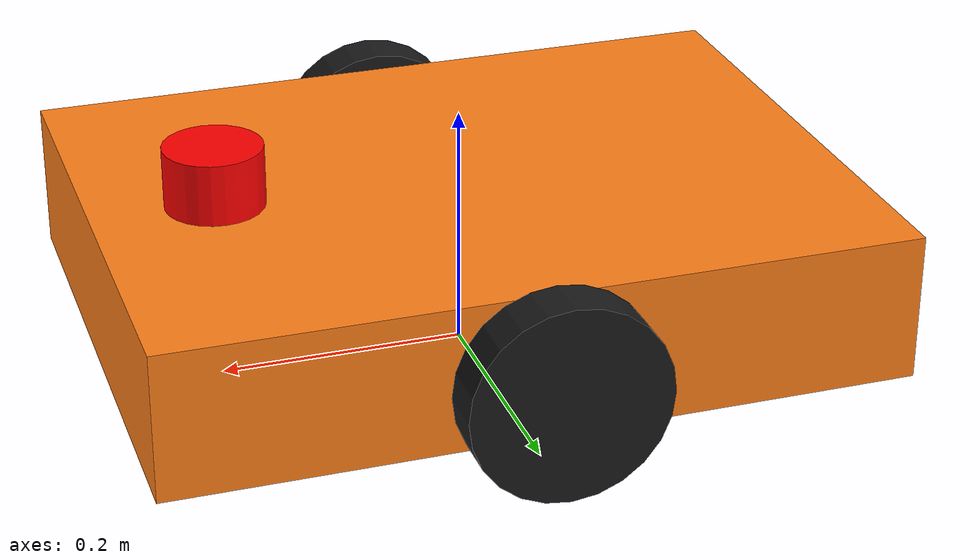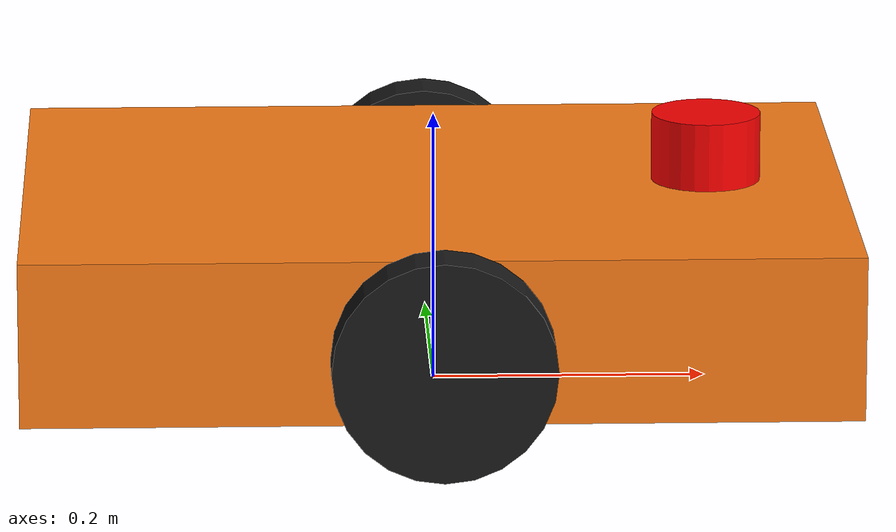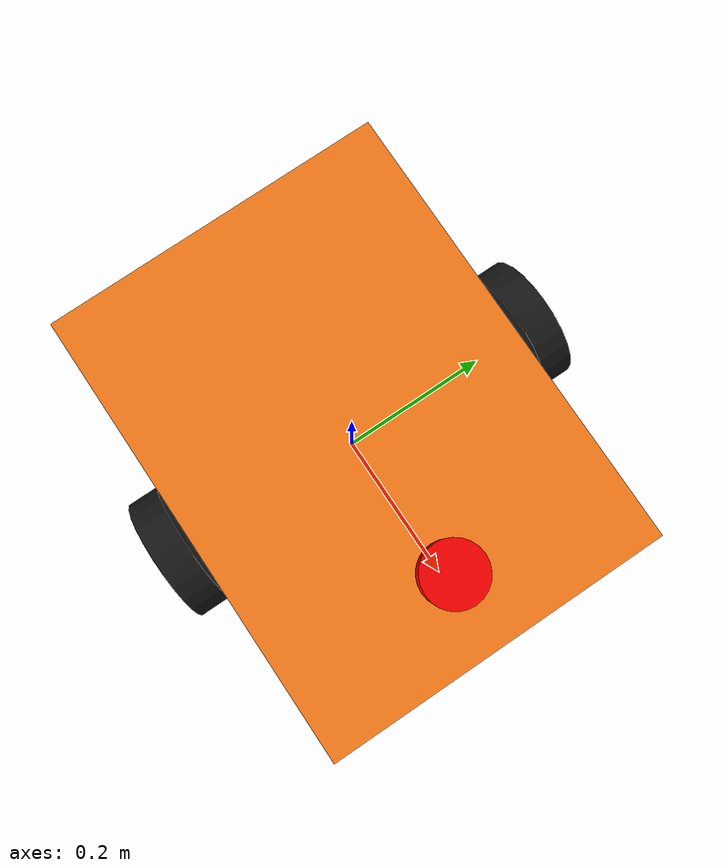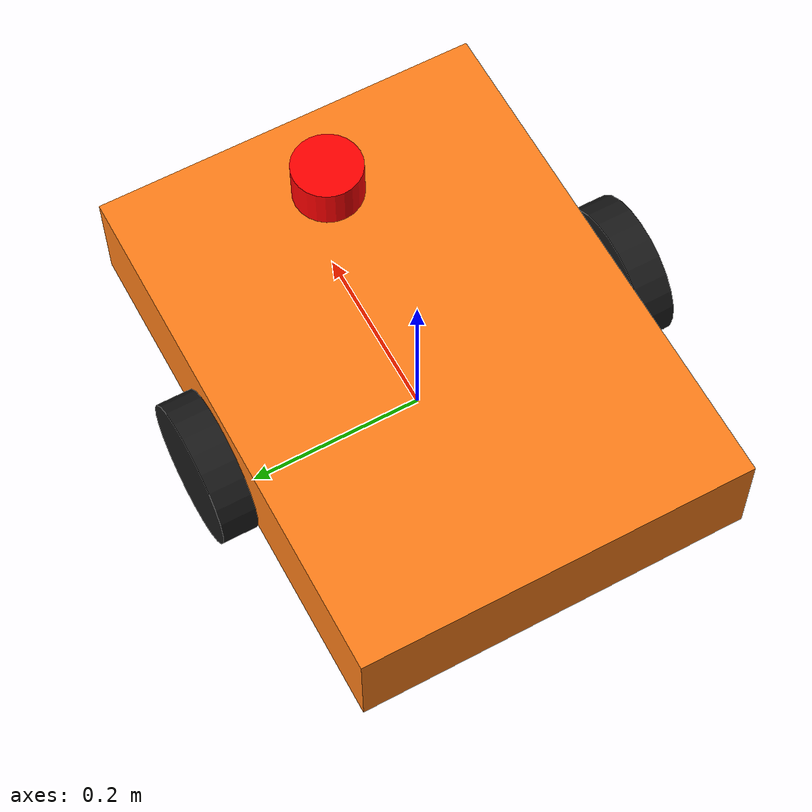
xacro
<?xml version="1.0"?>
<robot name="warehouse_amr" xmlns:xacro="http://www.ros.org/wiki/xacro">

  <!-- Dimensions in metres -->
  <xacro:property name="base_length" value="0.6"/>
  <xacro:property name="base_width" value="0.45"/>
  <xacro:property name="base_height" value="0.12"/>
  <xacro:property name="ground_clearance" value="0.03"/>
  <xacro:property name="wheel_radius" value="0.08"/>
  <xacro:property name="wheel_width" value="0.04"/>
  <xacro:property name="wheel_y" value="0.25"/>
  <xacro:property name="caster_radius" value="0.03"/>
  <xacro:property name="caster_x" value="0.22"/>
  <xacro:property name="lidar_radius" value="0.04"/>
  <xacro:property name="lidar_length" value="0.05"/>

  <!-- Colours-->
  <material name="orange"><color rgba="1.0 0.5 0.1 1.0"/></material>
  <material name="black"><color rgba="0.1 0.1 0.1 1.0"/></material>
  <material name="grey"><color rgba="0.6 0.6 0.6 1.0"/></material>
  <material name="red"><color rgba="1.0 0.0 0.0 1.0"/></material>

  <xacro:macro name="box_inertia" params="m x y z xyz rpy">
    <inertial>
      <origin xyz="${xyz}" rpy="${rpy}"/>
      <mass value="${m}"/>
      <inertia ixx="${m*(y*y + z*z)/12}" ixy="0" ixz="0"
               iyy="${m*(x*x + z*z)/12}" iyz="0"
               izz="${m*(x*x + y*y)/12}"/>
    </inertial>
  </xacro:macro>

  <xacro:macro name="cylinder_inertia" params="m r h xyz rpy">
    <inertial>
      <origin xyz="${xyz}" rpy="${rpy}"/>
      <mass value="${m}"/>
      <inertia ixx="${m*(3*r*r + h*h)/12}" ixy="0" ixz="0"
               iyy="${m*(3*r*r + h*h)/12}" iyz="0"
               izz="${m*r*r/2}"/>
    </inertial>
  </xacro:macro>

  <xacro:macro name="sphere_inertia" params="m r xyz rpy">
    <inertial>
      <origin xyz="${xyz}" rpy="${rpy}"/>
      <mass value="${m}"/>
      <inertia ixx="${2*m*r*r/5}" ixy="0" ixz="0"
               iyy="${2*m*r*r/5}" iyz="0"
               izz="${2*m*r*r/5}"/>
    </inertial>
  </xacro:macro>

  <!-- A point on the floor under the robot -->
  <link name="base_footprint"/>

  <joint name="base_joint" type="fixed">
    <parent link="base_footprint"/>
    <child link="base_link"/>
    <origin xyz="0 0 ${wheel_radius}" rpy="0 0 0"/>
  </joint>

  <!-- The body -->
  <link name="base_link">
    <visual>
      <origin xyz="0 0 ${ground_clearance + base_height/2 - wheel_radius}" rpy="0 0 0"/>
      <geometry>
        <box size="${base_length} ${base_width} ${base_height}"/>
      </geometry>
      <material name="orange"/>
    </visual>
    <collision>
      <origin xyz="0 0 ${ground_clearance + base_height/2 - wheel_radius}" rpy="0 0 0"/>
      <geometry>
        <box size="${base_length} ${base_width} ${base_height}"/>
      </geometry>
    </collision>
    <xacro:box_inertia m="10" x="${base_length}" y="${base_width}" z="${base_height}"
                       xyz="0 0 ${ground_clearance + base_height/2 - wheel_radius}" rpy="0 0 0"/>
  </link>

  <!-- Left wheel -->
  <link name="left_wheel">
    <visual>
      <origin xyz="0 0 0" rpy="${pi/2} 0 0"/>
      <geometry>
        <cylinder radius="${wheel_radius}" length="${wheel_width}"/>
      </geometry>
      <material name="black"/>
    </visual>
    <collision>
      <origin xyz="0 0 0" rpy="${pi/2} 0 0"/>
      <geometry>
        <cylinder radius="${wheel_radius}" length="${wheel_width}"/>
      </geometry>
    </collision>
    <!-- left_wheel-->
    <xacro:cylinder_inertia m="0.5" r="${wheel_radius}" h="${wheel_width}"
                            xyz="0 0 0" rpy="${pi/2} 0 0"/>
  </link>

  <joint name="left_wheel_joint" type="continuous">
    <parent link="base_link"/>
    <child link="left_wheel"/>
    <origin xyz="0 ${wheel_y} 0" rpy="0 0 0"/>
    <axis xyz="0 1 0"/>
  </joint>
  <!--Right-wheel-->

    <link name="right_wheel">
    <visual>
      <origin xyz="0 0 0" rpy="${pi/2} 0 0"/>
      <geometry>
        <cylinder radius="${wheel_radius}" length="${wheel_width}"/>
      </geometry>
      <material name="black"/>
    </visual>
    <collision>
      <origin  xyz="0 0 0" rpy="${pi/2} 0 0"/>
      <geometry>
        <cylinder radius="${wheel_radius}" length="${wheel_width}"/>
      </geometry>
    </collision>
    <!--right_wheel-->
    <xacro:cylinder_inertia m="0.5" r="${wheel_radius}" h="${wheel_width}"
                            xyz="0 0 0" rpy="${pi/2} 0 0"/>
  </link>

  <joint name="right_wheel_joint" type="continuous">
    <parent link="base_link"/>
    <child link="right_wheel"/>
    <origin xyz="0 ${-wheel_y} 0" rpy="0 0 0"/>
    <axis xyz="0 1 0"/>
  </joint>

  <!--Front caster wheel-->
  <link name="front_caster">
    <visual>
      <geometry>
        <sphere radius="${caster_radius}"/>
      </geometry>
      <material name="grey"/>
    </visual>
    <collision>
      <geometry>
        <sphere radius="${caster_radius}"/>
      </geometry>
    </collision>
    <xacro:sphere_inertia m="0.1" r="${caster_radius}" xyz="0 0 0" rpy="0 0 0"/>
  </link>

  <joint name="front_caster_joint" type="fixed">
    <parent link="base_link"/>
    <child link="front_caster"/>
    <origin xyz="${caster_x} 0 ${caster_radius - wheel_radius}" rpy="0 0 0"/>
  </joint>

  <!--Rear caster wheel-->
  <link name="rear_caster">
    <visual>
      <geometry>
        <sphere radius="${caster_radius}"/>
      </geometry>
      <material name="grey"/>
    </visual>
    <collision>
      <geometry>
        <sphere radius="${caster_radius}"/>
      </geometry>
    </collision>
    <xacro:sphere_inertia m="0.1" r="${caster_radius}" xyz="0 0 0" rpy="0 0 0"/>
  </link>

  <joint name="rear_caster_joint" type="fixed">
    <parent link="base_link"/>
    <child link="rear_caster"/>
    <origin xyz="${-caster_x} 0 ${caster_radius - wheel_radius}" rpy="0 0 0"/>
  </joint>
  <!--Lidar-->
    <link name="lidar_link">
    <visual>
      <geometry>
        <cylinder radius="${lidar_radius}" length="${lidar_length}"/>
      </geometry>
      <material name="red"/>
    </visual>
    <collision>
      <geometry>
        <cylinder radius="${lidar_radius}" length="${lidar_length}"/>
      </geometry>
    </collision>
    <xacro:cylinder_inertia m="0.2" r="${lidar_radius}" h="${lidar_length}"
                            xyz="0 0 0" rpy="0 0 0"/>
  </link>
  <joint name="lidar_joint" type="fixed">
    <parent link="base_link"/>
    <child link="lidar_link"/>
    <origin xyz="0.2 0 ${ground_clearance + base_height - wheel_radius + lidar_length/2}" rpy="0 0 0" />
  </joint>
  <!-- ===== Gazebo ===== -->
    <!-- ===== Gazebo ===== -->
  <gazebo>
    <plugin filename="gz-sim-diff-drive-system" name="gz::sim::systems::DiffDrive">
      <left_joint>left_wheel_joint</left_joint>
      <right_joint>right_wheel_joint</right_joint>
      <wheel_separation>${2*wheel_y}</wheel_separation>
      <wheel_radius>${wheel_radius}</wheel_radius>
      <max_linear_acceleration>1.0</max_linear_acceleration>
      <topic>cmd_vel</topic>
      <odom_topic>odom</odom_topic>
      <tf_topic>tf</tf_topic>
      <frame_id>odom</frame_id>
      <child_frame_id>base_footprint</child_frame_id>
      <odom_publish_frequency>30</odom_publish_frequency>
    </plugin>

    <plugin filename="gz-sim-joint-state-publisher-system" name="gz::sim::systems::JointStatePublisher">
      <topic>joint_states</topic>
    </plugin>
  </gazebo>
  <gazebo reference="front_caster">
    <mu1>0.001</mu1>
    <mu2>0.001</mu2>
  </gazebo>

  <gazebo reference="rear_caster">
    <mu1>0.001</mu1>
    <mu2>0.001</mu2>
  </gazebo>

    <gazebo reference="lidar_link">
    <sensor name="lidar" type="gpu_lidar">
      <gz_frame_id>lidar_link</gz_frame_id>
      <topic>scan</topic>
      <update_rate>10</update_rate>
      <always_on>true</always_on>
      <visualize>true</visualize>
      <lidar>
        <scan>
          <horizontal>
            <samples>360</samples>
            <resolution>1</resolution>
            <min_angle>${-pi}</min_angle>
            <max_angle>${pi}</max_angle>
          </horizontal>
        </scan>
        <range>
          <min>0.12</min>
          <max>12.0</max>
          <resolution>0.01</resolution>
        </range>
      </lidar>
    </sensor>
  </gazebo>

</robot>
